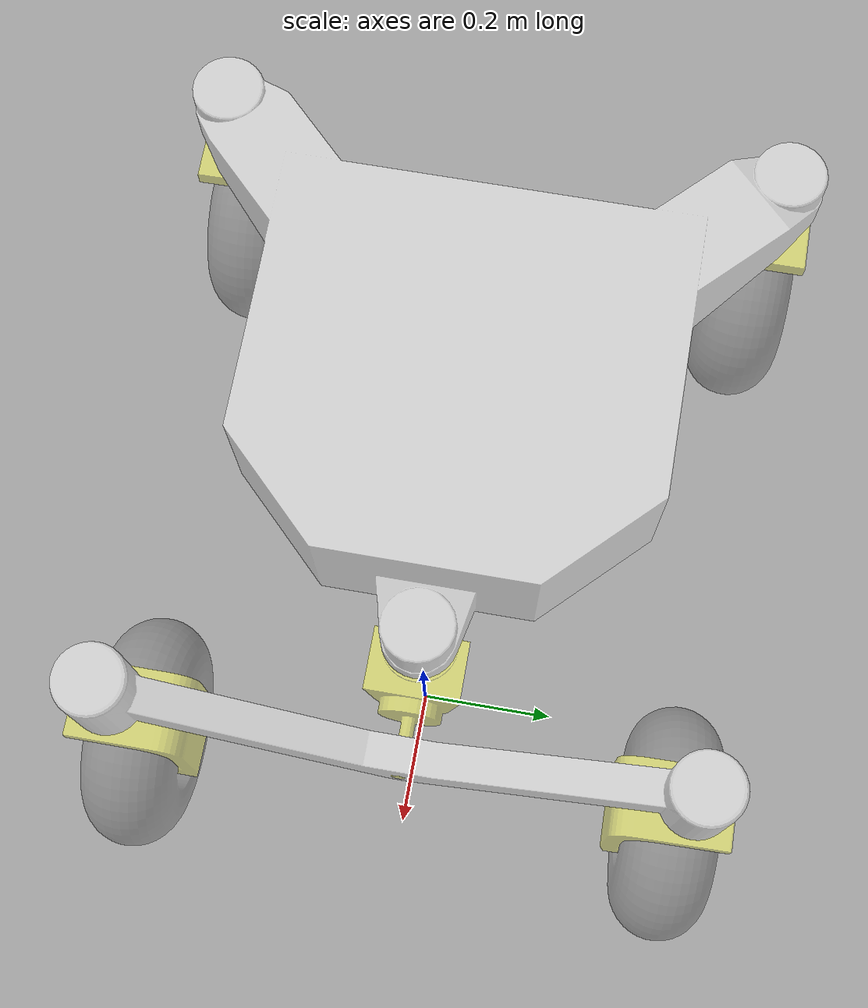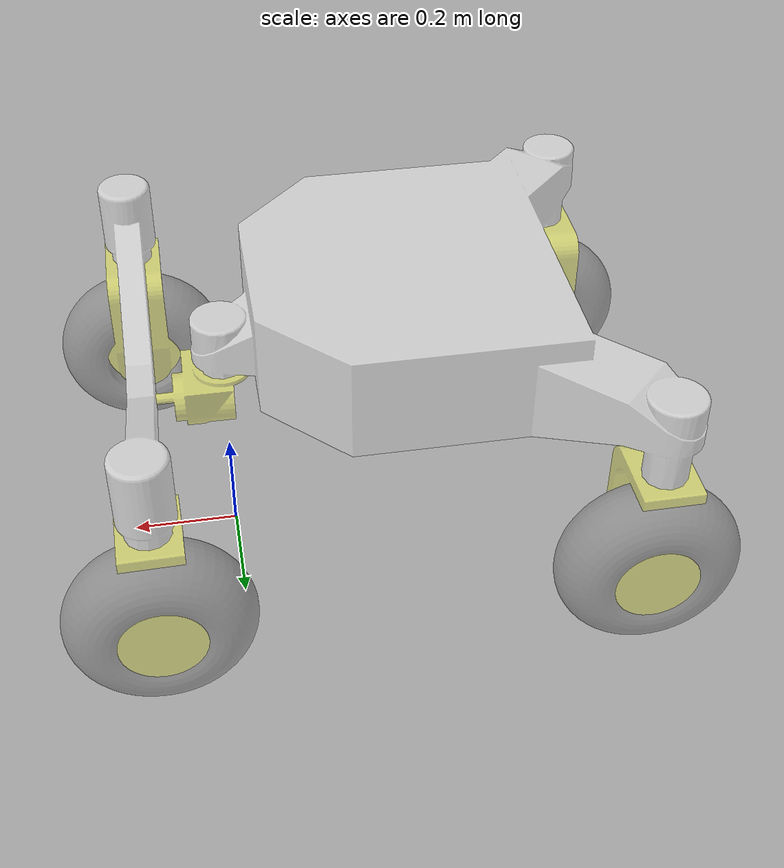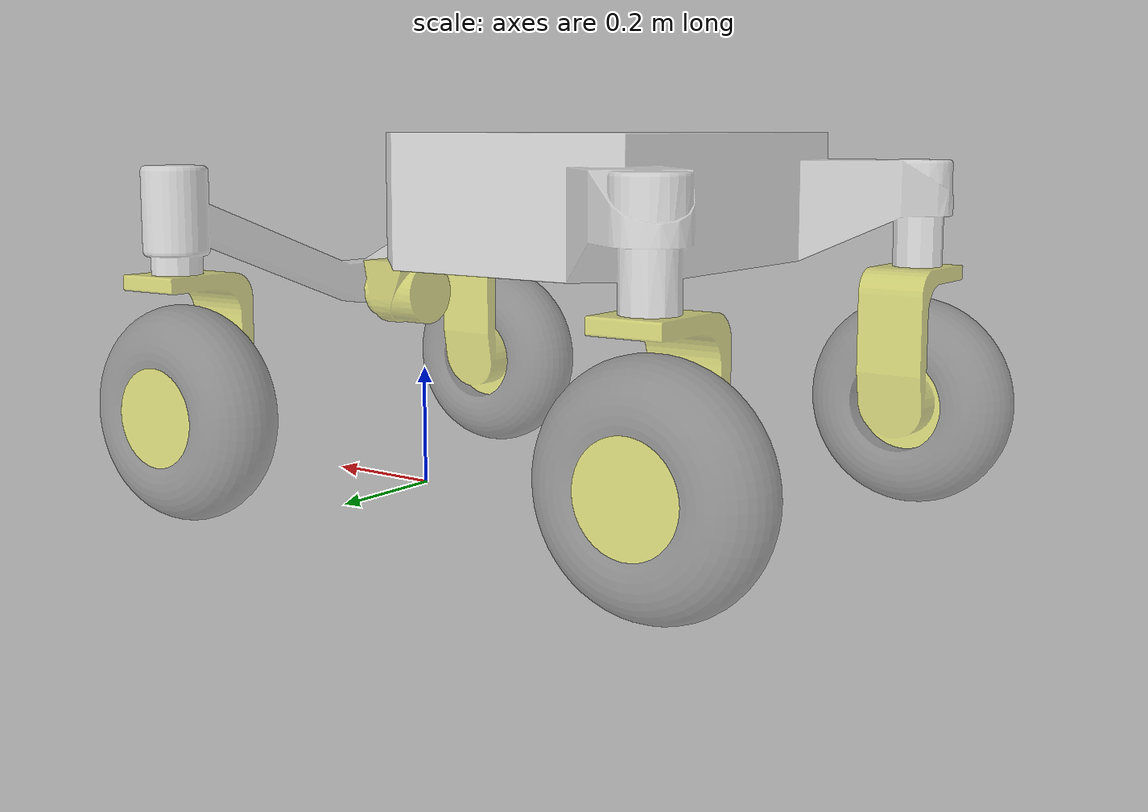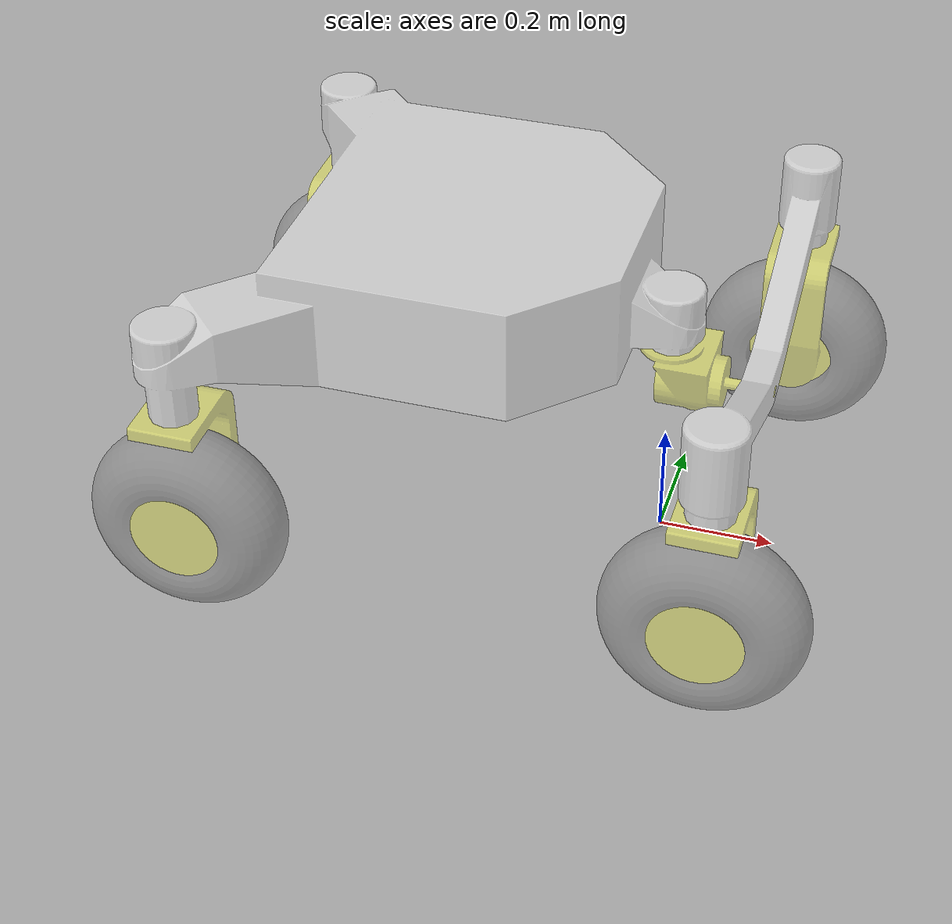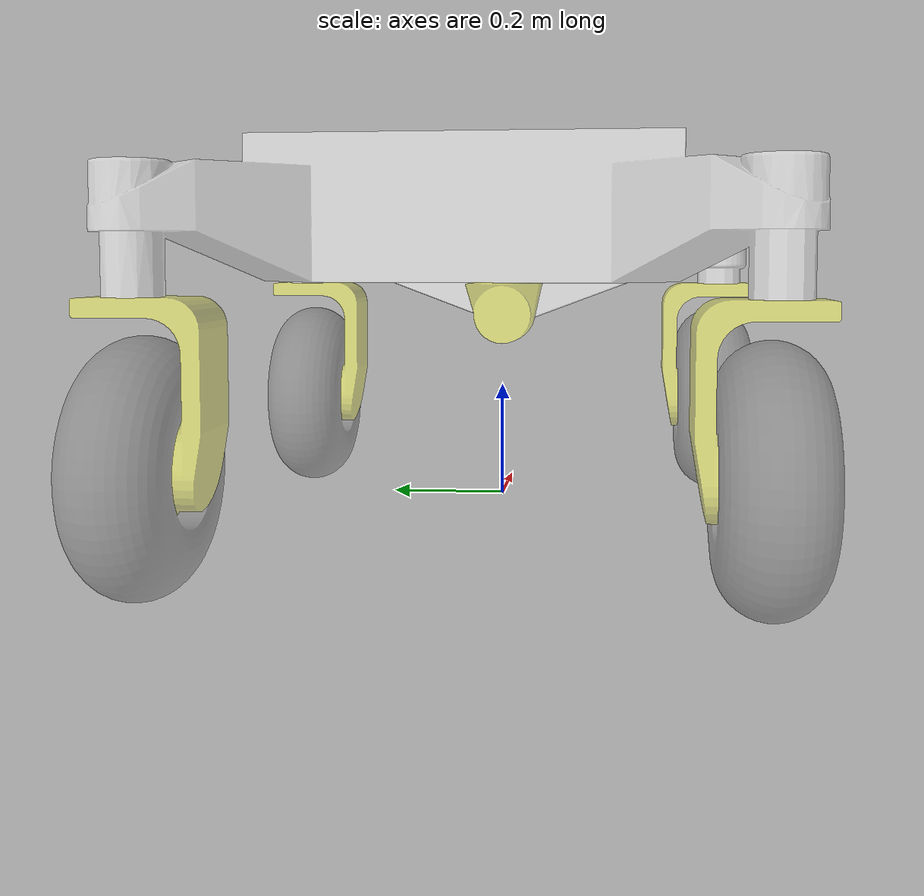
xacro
<?xml version="1.0"?>
<robot xmlns:xacro="http://www.ros.org/wiki/xacro"  name="ernest_system">

  <!-- Import model -->
  <xacro:include filename="$(find description)/urdf/ernest.urdf.xacro"/>
  <!-- Import controller -->
  <xacro:include filename="$(find description)/urdf/effort_controller.xacro"/>
  <!-- Import gazebo references + pose -->
  <xacro:include filename="$(find description)/urdf/ernest_gazebo.xacro" />

  <xacro:ernest_gazebo/>
  <xacro:ernest/>
  <xacro:effort_controller/>
</robot>

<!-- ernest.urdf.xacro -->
<robot xmlns:xacro="http://www.ros.org/wiki/xacro" name="ernest">
<xacro:include filename="$(find description)/urdf/materials.xacro"/>

<xacro:macro name="ernest">

  <link name="base_link">
  </link>

  <joint name="frame_joint" type="fixed">
    <origin rpy="0 0 ${- pi/2}" xyz="-0.4 0 0.4"/>
    <parent link="base_link"/>
    <child link="chassis"/>
  </joint>

  <link name="chassis">
    <inertial>
      <origin rpy="0 0 0" xyz="0.0 -0.1 0.1"/>
      <mass value="17.31"/>
      <inertia ixx="4.1455" ixy="0.0210" ixz="-0.0053"
      iyy="1.4858" iyz="-0.6295" izz="5.2302"/>
    </inertial>
    <visual>
      <origin rpy="0 0 0" xyz="0 0 0"/>
      <geometry>
        <mesh filename="file://$(find description)/meshes/chassis.STL"/>
      </geometry>
      <material name="white"/>
    </visual>
    <collision>
      <origin rpy="0 0 0" xyz="0 0 0"/>
      <geometry>
        <mesh filename="file://$(find description)/meshes/chassis.STL"/>
      </geometry>
    </collision>
  </link>

  <link name="pivot">
    <inertial>
      <origin rpy="0 0 0" xyz="-5.83048022436035E-08 -0.0363481578557913 -0.0534922287892846"/>
      <mass value="2.82"/>
      <inertia ixx="0.0045" ixy="0.0" ixz="0.0" iyy="0.0044" iyz="0.0" izz="0.0047"/>
    </inertial>
    <visual>
      <origin rpy="0 0 0" xyz="0 0 0"/>
      <geometry>
        <mesh filename="file://$(find description)/meshes/pivot.STL"/>
      </geometry>
      <material name="black"/>
    </visual>
    <collision>
      <origin rpy="0 0 0" xyz="0 0 0"/>
      <geometry>
        <mesh filename="file://$(find description)/meshes/pivot.STL"/>
      </geometry>
    </collision>
  </link>

  <joint name="pivot_joint" type="revolute">
    <limit effort="2000.0" lower="-0.8" upper="0.8" velocity="20"/>
    <origin rpy="0 0 3.13911747329568" xyz="0 0.4015 -0.00700000000000001"/>
    <parent link="chassis"/>
    <child link="pivot"/>
    <axis xyz="0 0 -1"/>
  </joint>

  <link name="bogie">
    <inertial>
      <origin rpy="0 0 0" xyz="0.0 0.15 0.05"/>
      <mass value="8.475"/>
      <inertia ixx="0.0454" ixy="0.0" ixz="0.0"
               iyy="1.2486" iyz="0.0012" izz="1.2830"/>
    </inertial>
    <visual>
      <origin rpy="0 0 0" xyz="0 0 0"/>
      <geometry>
        <mesh filename="file://$(find description)/meshes/bogie.STL"/>
      </geometry>
      <material name="white"/>
    </visual>
    <collision>
      <origin rpy="0 0 0" xyz="0 0 0"/>
      <geometry>
        <mesh filename="file://$(find description)/meshes/bogie.STL"/>
      </geometry>
    </collision>
  </link>

  <joint name="bogie_joint" type="revolute">
    <limit effort="100" lower="-1" upper="1" velocity="30"/>
    <origin rpy="1.5707963267949 0.000529942236827729 0" xyz="0 -0.101800622452903 -0.0640000000000083"/>
    <parent link="pivot"/>
    <child link="bogie"/>
    <axis xyz="0 0 1"/>
  </joint>

  <link name="front_left_steer">
    <inertial>
      <origin rpy="0 0 0" xyz="0.0 0.0 -0.18"/>
      <mass value="3.15"/>
      <inertia ixx="0.0235" ixy="0.0" ixz="0.0034" iyy="0.0311" iyz="-0.0" izz="0.0134"/>
    </inertial>
    <visual>
      <origin rpy="0 0 0" xyz="0 0 0"/>
      <geometry>
        <mesh filename="file://$(find description)/meshes/front_left_steer.STL"/>
      </geometry>
      <material name="black"/>
    </visual>
    <collision>
      <origin rpy="0 0 0" xyz="0 0 0"/>
      <geometry>
        <mesh filename="file://$(find description)/meshes/front_left_steer.STL"/>
      </geometry>
    </collision>
  </link>

  <joint name="front_left_steer_joint" type="revolute">
    <limit effort="100" lower="-${pi}" upper="${pi}" velocity="30"/>
    <origin rpy="-1.5707963267949 0.0208107531087718 0" xyz="0.399593578400315 0.05 0.0507993775470971"/>
    <parent link="bogie"/>
    <child link="front_left_steer"/>
    <axis xyz="0 0 -1"/>
  </joint>

  <link name="front_left_wheel">
    <inertial>
      <origin rpy="0 0 0" xyz="0.0 0.0 -0.0103428040717592"/>
      <mass value="2.82"/>
      <inertia ixx="0.0224" ixy="0.0" ixz="-0.0006"
              iyy="0.0224" iyz="0.0" izz="0.0337"/>
    </inertial>
    <visual>
      <origin rpy="0 0 0" xyz="0 0 0"/>
      <geometry>
        <mesh filename="file://$(find description)/meshes/front_left_wheel.STL"/>
      </geometry>
      <material name="grey"/>
    </visual>
    <collision>
      <origin rpy="0 0 0" xyz="0 0 0.0"/>
      <geometry>
          <mesh filename="file://$(find description)/meshes/front_left_wheel.STL"/>
      </geometry>
    </collision>
  </link>

  <joint name="front_left_wheel_joint" type="continuous">
    <limit effort="100" velocity="10.0"/>
    <origin rpy="1.57079632679491 0.0288958987838113 1.5707963267949" xyz="0 0 -0.214560184613926"/>
    <parent link="front_left_steer"/>
    <child link="front_left_wheel"/>
    <axis xyz="0 0 1"/>
  </joint>
  <link name="front_right_steer">
    <inertial>
      <origin rpy="0 0 0" xyz="0.0 0.0 -0.18"/>
      <mass value="3.15"/>
      <inertia ixx="0.0331" ixy="0.0" ixz="0.0" iyy="0.0235" iyz="-0.0034" izz="0.0134"/>    </inertial>
    <visual>
      <origin rpy="0 0 0" xyz="0 0 0"/>
      <geometry>
        <mesh filename="file://$(find description)/meshes/front_right_steer.STL"/>
      </geometry>
      <material name="black"/>
    </visual>
    <collision>
      <origin rpy="0 0 0" xyz="0 0 0"/>
      <geometry>
        <mesh filename="file://$(find description)/meshes/front_right_steer.STL"/>
      </geometry>
    </collision>
  </link>

  <joint name="front_right_steer_joint" type="revolute">
    <limit effort="100" lower="-${pi}" upper="${pi}" velocity="30"/>
    <origin rpy="-1.57079632679545 -1.56850410535828 0" xyz="-0.399593578400314 0.05 0.0507993775470972"/>
    <parent link="bogie"/>
    <child link="front_right_steer"/>
    <axis xyz="0 0 -1"/>
  </joint>

  <link name="front_right_wheel">
    <inertial>
      <origin rpy="0 0 0" xyz="3.33066907387547E-16 2.77555756156289E-16 -0.0103428040717612"/>
      <mass value="2.82"/>
      <inertia ixx="0.0224" ixy="0.0" ixz="-0.0006"
               iyy="0.0224" iyz="0.0" izz="0.0337"/>
    </inertial>
    <visual>
      <origin rpy="0 0 0" xyz="0 0 0"/>
      <geometry>
        <mesh filename="file://$(find description)/meshes/front_right_wheel.STL"/>
      </geometry>
      <material name="grey"/>
    </visual>
    <collision>
      <origin rpy="0 0 0" xyz="0 0 0.0"/>
      <geometry>
        <mesh filename="file://$(find description)/meshes/front_right_wheel.STL"/>
      </geometry>
    </collision>
  </link>

  <joint name="front_right_wheel_joint" type="continuous">
    <limit effort="100" velocity="10.0"/>
    <origin rpy="1.5707963267949 1.23836412201798 0" xyz="0 0 -0.214560184613926"/>
    <parent link="front_right_steer"/>
    <child link="front_right_wheel"/>
    <axis xyz="0 0 -1"/>
  </joint>
  <link name="rear_right_steer">
    <inertial>
      <origin rpy="0 0 0" xyz="0.0 0.0 -0.18"/>
      <mass value="3.15"/>
      <inertia ixx="0.0235" ixy="0.0" ixz="0.0034" iyy="0.0311" iyz="0.0" izz="0.0134"/>    </inertial>
    <visual>
      <origin rpy="0 0 0" xyz="0 0 0"/>
      <geometry>
        <mesh filename="file://$(find description)/meshes/rear_right_steer.STL"/>
      </geometry>
      <material name="black"/>
    </visual>
    <collision>
      <origin rpy="0 0 0" xyz="0 0 0"/>
      <geometry>
        <mesh filename="file://$(find description)/meshes/rear_right_steer.STL"/>
      </geometry>
    </collision>
  </link>
  <joint name="rear_right_steer_joint" type="revolute">
    <limit effort="100" lower="-${pi}" upper="${pi}" velocity="30"/>
    <origin rpy="0 0 0" xyz="0.4038086578651 -0.313808657865102 -0.01666"/>
    <parent link="chassis"/>
    <child link="rear_right_steer"/>
    <axis xyz="0 0 -1"/>
  </joint>
  <link name="rear_right_wheel">
    <inertial>
      <origin rpy="0 0 0" xyz="2.77555756156289E-17 2.22044604925031E-16 -0.0103428040717601"/>
      <mass value="2.82"/>
      <inertia ixx="0.0224" ixy="0.0" ixz="-0.0006"
              iyy="0.0224" iyz="0.0" izz="0.0337"/>
    </inertial>
    <visual>
      <origin rpy="0 0 0" xyz="0 0 0"/>
      <geometry>
        <mesh filename="file://$(find description)/meshes/rear_right_wheel.STL"/>
      </geometry>
      <material name="grey"/>
    </visual>
    <collision>
      <origin rpy="0 0 0" xyz="0 0 0.0"/>
      <geometry>
        <mesh filename="file://$(find description)/meshes/rear_right_wheel.STL"/>
      </geometry>
    </collision>
  </link>
  <joint name="rear_right_wheel_joint" type="continuous">
    <limit effort="100" velocity="10.0"/>
    <origin rpy="0.0053380848461707 1.5707963267949 0" xyz="0 0 -0.219"/>
    <parent link="rear_right_steer"/>
    <child link="rear_right_wheel"/>
    <axis xyz="0 0 -1"/>
  </joint>
  <link name="rear_left_steer">
    <inertial>
      <origin rpy="0 0 0" xyz="0.0 0.0 -0.18"/>
      <mass value="3.15"/>
      <inertia ixx="0.0311" ixy="0.0" ixz="0.0" iyy="0.0" iyz="-0.0034" izz="0.0134"/>    </inertial>
    <visual>
      <origin rpy="0 0 0" xyz="0 0 0"/>
      <geometry>
        <mesh filename="file://$(find description)/meshes/rear_left_steer.STL"/>
      </geometry>
      <material name="black"/>
    </visual>
    <collision>
      <origin rpy="0 0 0" xyz="0 0 0"/>
      <geometry>
        <mesh filename="file://$(find description)/meshes/rear_left_steer.STL"/>
      </geometry>
    </collision>
  </link>
  <joint name="rear_left_steer_joint" type="revolute">
    <limit effort="100" lower="-${pi}" upper="${pi}" velocity="30"/>
    <origin rpy="0 0 -1.56733797587802" xyz="-0.403808657865099 -0.313808657865101 -0.01666"/>
    <parent link="chassis"/>
    <child link="rear_left_steer"/>
    <axis xyz="0 0 -1"/>
  </joint>

  <link name="rear_left_wheel">
    <inertial>
      <origin rpy="0 0 0" xyz="1.66533453693773E-16 -2.77555756156289E-16 -0.0103428040717607"/>
      <mass value="2.82"/>
      <inertia ixx="0.0224" ixy="0.0" ixz="-0.0006"
              iyy="0.0224" iyz="0.0" izz="0.0337"/>
    </inertial>
    <visual>
      <origin rpy="0 0 0" xyz="0 0 0"/>
      <geometry>
        <mesh filename="file://$(find description)/meshes/rear_left_wheel.STL"/>
      </geometry>
      <material name="grey"/>
    </visual>
    <collision>
      <origin rpy="0 0 0" xyz="0 0 0.0"/>
      <geometry>
        <mesh filename="file://$(find description)/meshes/rear_left_wheel.STL"/>
      </geometry>
    </collision>
  </link>
  <joint name="rear_left_wheel_joint" type="continuous">
    <limit effort="100" velocity="10.0"/>
    <origin rpy="-1.5707963267949 1.3424366648975 -3.14159265358979" xyz="0 0 -0.219"/>
    <parent link="rear_left_steer"/>
    <child link="rear_left_wheel"/>
    <axis xyz="0 0 1"/>
  </joint>

</xacro:macro>
</robot>

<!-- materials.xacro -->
<robot xmlns:xacro="http://www.ros.org/wiki/xacro">

  <material name="black">
    <color rgba="1.0 1.0 0.3 0.5"/>
  </material>

  <material name="white">
    <color rgba="1.0 1.0 1.0 0.5"/>
  </material>

  <material name="grey">
    <color rgba="0.5 0.5 0.5 0.5"/>
  </material>
</robot>
